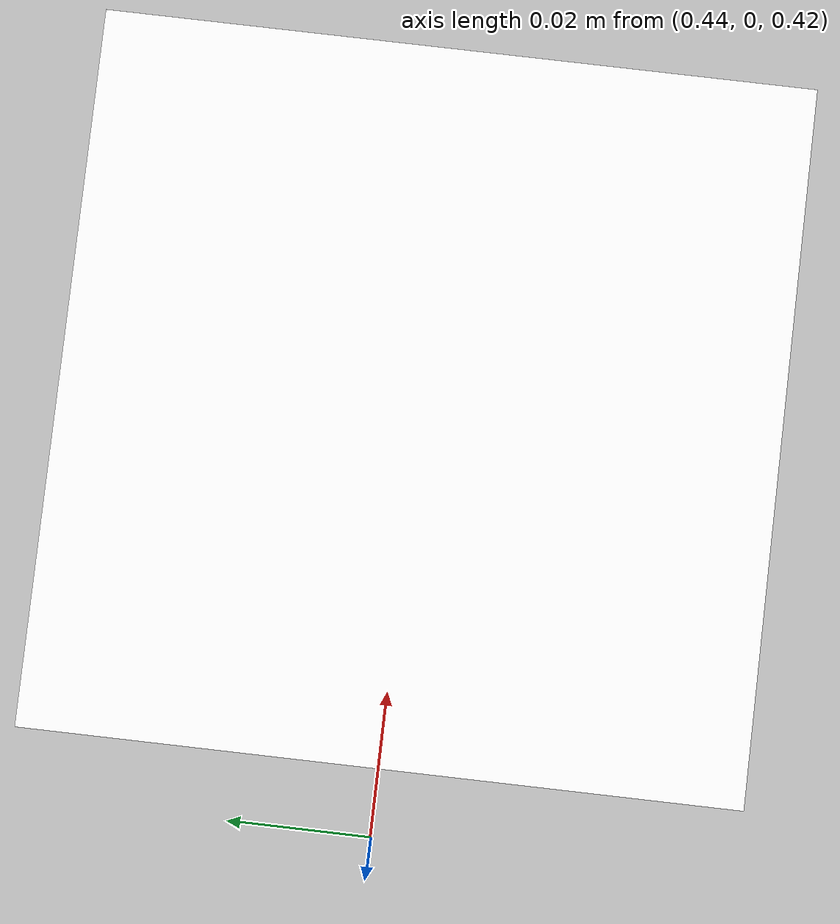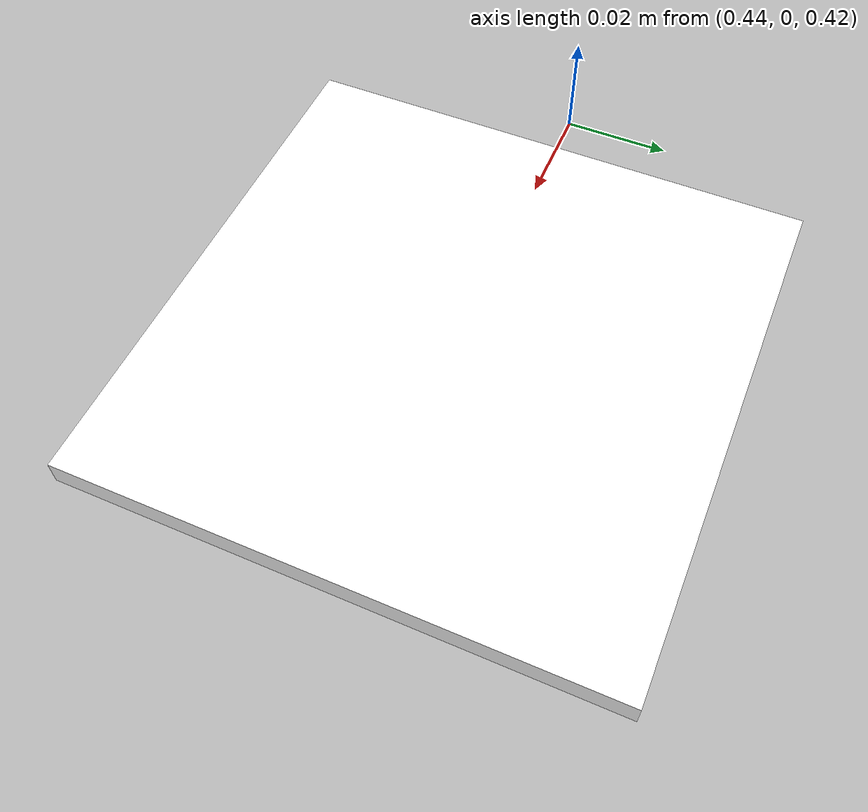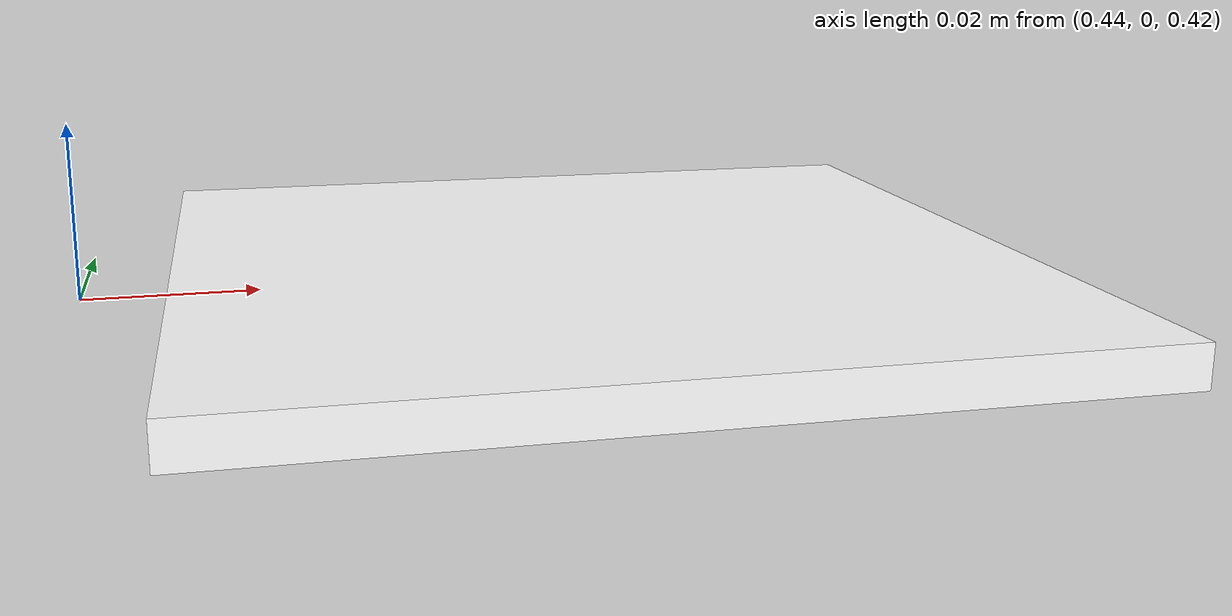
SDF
<?xml version="1.0"?>
<sdf version="1.6">
  <world name="jaka_zu7_with_camera">

    <physics name="1ms" type="ignored">
      <max_step_size>0.001</max_step_size>
      <real_time_factor>1.0</real_time_factor>
    </physics>

    <!-- Core Gazebo systems -->
    <plugin filename="gz-sim-physics-system" name="gz::sim::systems::Physics"/>
    <plugin filename="gz-sim-user-commands-system" name="gz::sim::systems::UserCommands"/>
    <plugin filename="gz-sim-scene-broadcaster-system" name="gz::sim::systems::SceneBroadcaster"/>
    <plugin filename="gz-sim-contact-system" name="gz::sim::systems::Contact"/>

    <!-- Camera sensor system with ogre2 render engine -->
    <plugin filename="gz-sim-sensors-system" name="gz::sim::systems::Sensors">
      <render_engine>ogre2</render_engine>
    </plugin>

    <scene>
      <ambient>0.6 0.6 0.6 1</ambient>
      <background>0.7 0.7 0.7 1</background>
      <grid>true</grid>
      <shadows>true</shadows>
    </scene>

    <light type="directional" name="sun">
      <cast_shadows>true</cast_shadows>
      <pose>0 0 10 0 0 0</pose>
      <diffuse>0.9 0.9 0.9 1</diffuse>
      <specular>0.3 0.3 0.3 1</specular>
      <attenuation>
        <range>1000</range>
        <constant>0.9</constant>
        <linear>0.01</linear>
        <quadratic>0.001</quadratic>
      </attenuation>
      <direction>-0.5 0.1 -0.9</direction>
    </light>

    <!-- Ground plane -->
    <model name="ground_plane">
      <static>true</static>
      <link name="link">
        <collision name="collision">
          <geometry>
            <plane>
              <normal>0 0 1</normal>
              <size>100 100</size>
            </plane>
          </geometry>
        </collision>
        <visual name="visual">
          <geometry>
            <plane>
              <normal>0 0 1</normal>
              <size>100 100</size>
            </plane>
          </geometry>
          <material>
            <ambient>0.5 0.5 0.5 1</ambient>
            <diffuse>0.7 0.7 0.7 1</diffuse>
            <specular>0.1 0.1 0.1 1</specular>
          </material>
        </visual>
      </link>
    </model>

    <!-- Apriltag target on table for visual servoing -->
    <model name="apriltag_target">
      <static>true</static>
      <pose>0.5 0 0.42 0 0 0</pose>
      <link name="link">
        <visual name="visual">
          <geometry>
            <box>
              <size>0.1 0.1 0.005</size>
            </box>
          </geometry>
          <material>
            <ambient>1 1 1 1</ambient>
            <diffuse>1 1 1 1</diffuse>
            <specular>0.2 0.2 0.2 1</specular>
          </material>
        </visual>
        <collision name="collision">
          <geometry>
            <box>
              <size>0.1 0.1 0.005</size>
            </box>
          </geometry>
        </collision>
      </link>
    </model>

  </world>
</sdf>
